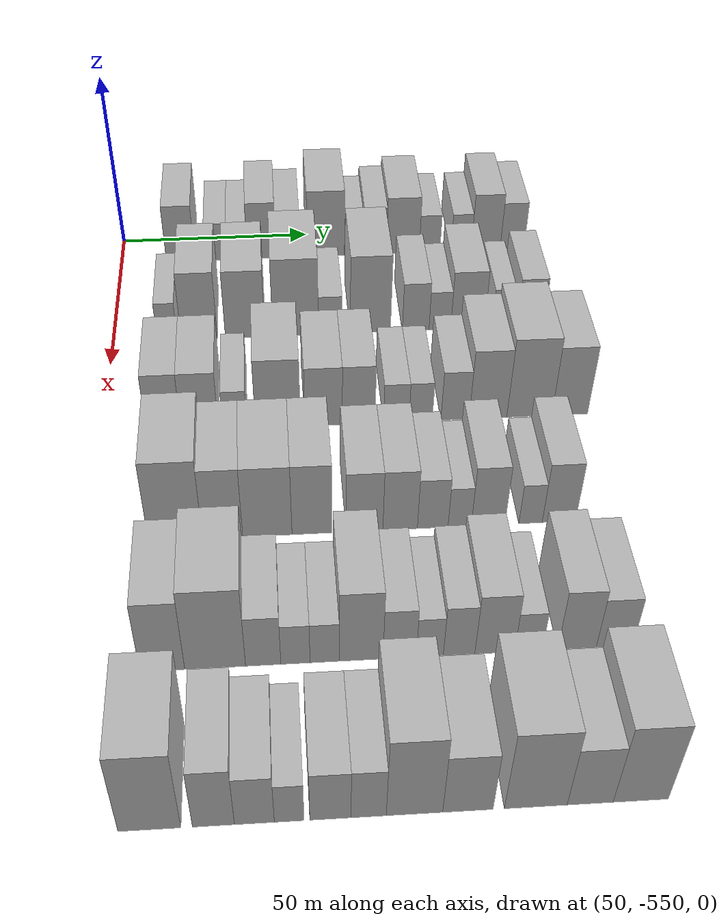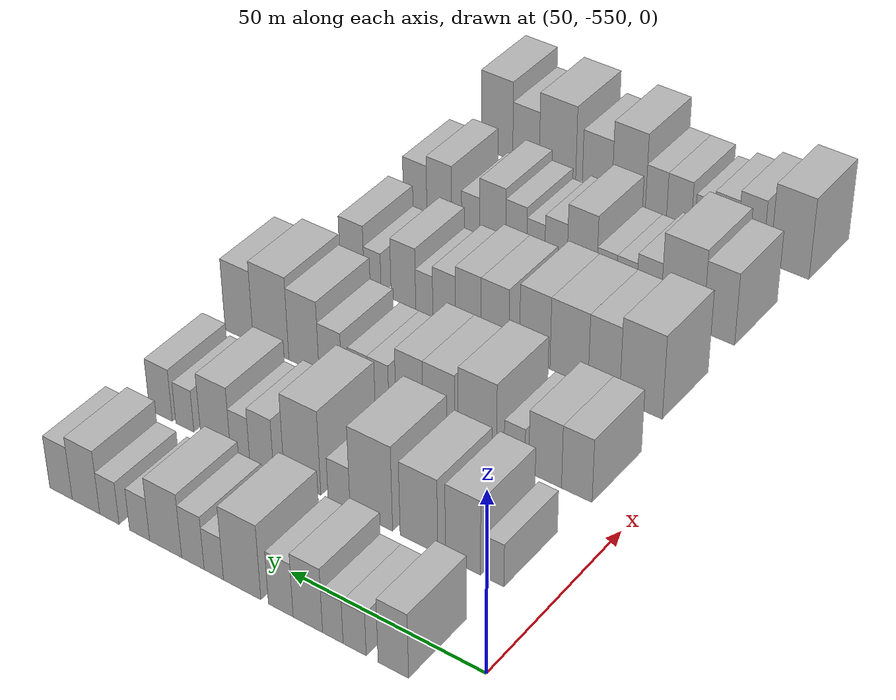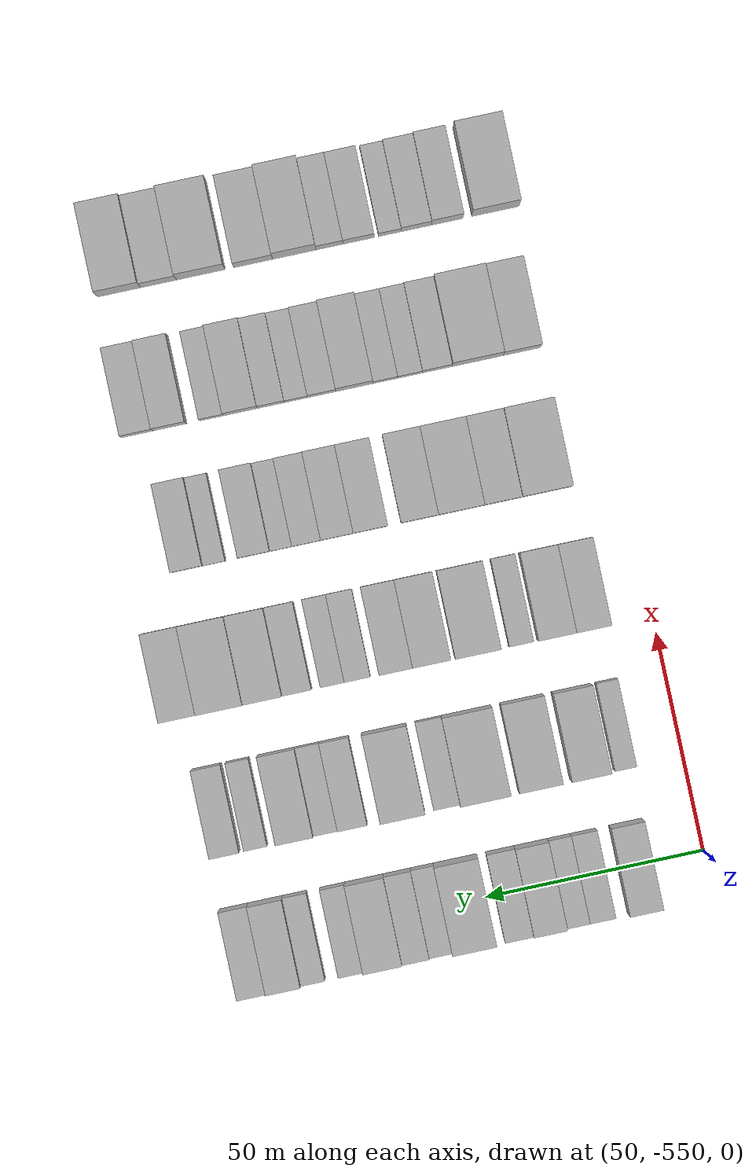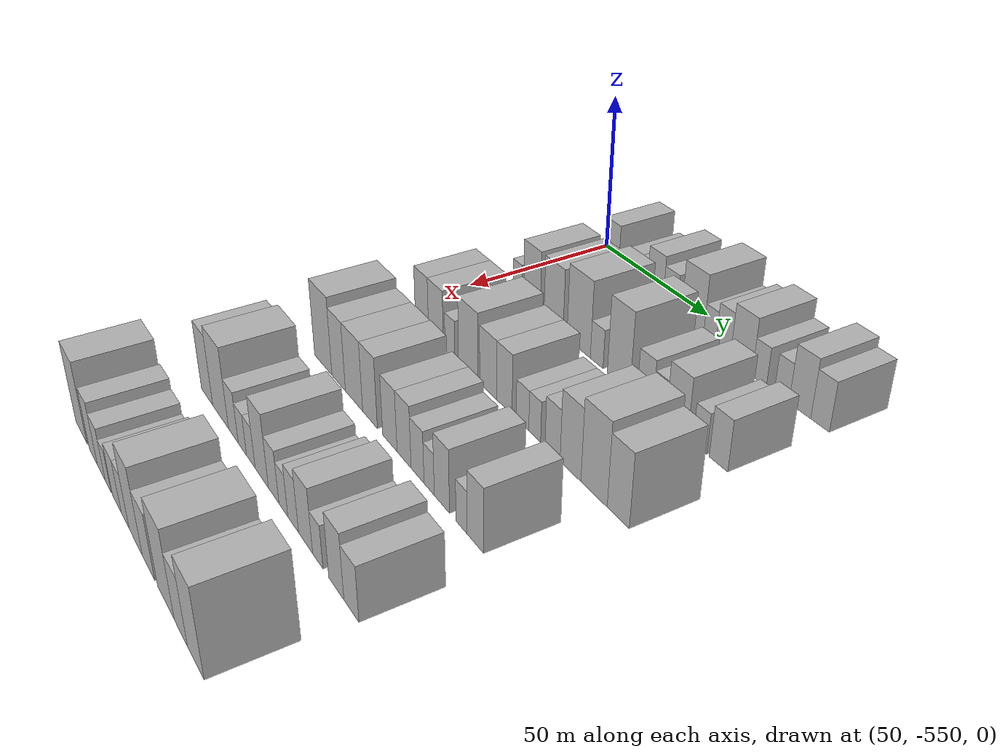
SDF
<sdf version="1.6">
 <world name="default">
  <model name="building_1">
   <static>1</static>
   <pose>50.0000 -534.1991 0 0.000000 0.000000 0.000000</pose>
   <link name="link">
    <pose>0 0 9.00 0 0 0</pose>
    <collision name="collision"><geometry><box><size>20.0000 7.6018 18.0000</size></box></geometry></collision>
    <visual name="visual">
     <cast_shadows>0</cast_shadows>
     <geometry><box><size>20.0000 7.6018 18.0000</size></box></geometry>
     <material>
      <script>
       <uri>model://HANNAS_wall/materials/scripts</uri>
       <uri>model://HANNAS_wall/materials/textures</uri>
       <name>vrc/HANNAS_wall</name>
      </script>
     </material>
    </visual>
   </link>
  </model>
  <model name="building_2">
   <static>1</static>
   <pose>50.0000 -524.4637 0 0.000000 0.000000 0.000000</pose>
   <link name="link">
    <pose>0 0 6.00 0 0 0</pose>
    <collision name="collision"><geometry><box><size>20.0000 5.8690 12.0000</size></box></geometry></collision>
    <visual name="visual">
     <cast_shadows>0</cast_shadows>
     <geometry><box><size>20.0000 5.8690 12.0000</size></box></geometry>
     <material>
      <script>
       <uri>model://HANNAS_wall/materials/scripts</uri>
       <uri>model://HANNAS_wall/materials/textures</uri>
       <name>vrc/HANNAS_wall</name>
      </script>
     </material>
    </visual>
   </link>
  </model>
  <model name="building_3">
   <static>1</static>
   <pose>50.0000 -518.8966 0 0.000000 0.000000 0.000000</pose>
   <link name="link">
    <pose>0 0 6.00 0 0 0</pose>
    <collision name="collision"><geometry><box><size>20.0000 5.2653 12.0000</size></box></geometry></collision>
    <visual name="visual">
     <cast_shadows>0</cast_shadows>
     <geometry><box><size>20.0000 5.2653 12.0000</size></box></geometry>
     <material>
      <script>
       <uri>model://HANNAS_wall/materials/scripts</uri>
       <uri>model://HANNAS_wall/materials/textures</uri>
       <name>vrc/HANNAS_wall</name>
      </script>
     </material>
    </visual>
   </link>
  </model>
  <model name="building_4">
   <static>1</static>
   <pose>50.0000 -512.4413 0 0.000000 0.000000 0.000000</pose>
   <link name="link">
    <pose>0 0 9.00 0 0 0</pose>
    <collision name="collision"><geometry><box><size>20.0000 7.6454 18.0000</size></box></geometry></collision>
    <visual name="visual">
     <cast_shadows>0</cast_shadows>
     <geometry><box><size>20.0000 7.6454 18.0000</size></box></geometry>
     <material>
      <script>
       <uri>model://HANNAS_wall/materials/scripts</uri>
       <uri>model://HANNAS_wall/materials/textures</uri>
       <name>vrc/HANNAS_wall</name>
      </script>
     </material>
    </visual>
   </link>
  </model>
  <model name="building_5">
   <static>1</static>
   <pose>50.0000 -505.3724 0 0.000000 0.000000 0.000000</pose>
   <link name="link">
    <pose>0 0 7.50 0 0 0</pose>
    <collision name="collision"><geometry><box><size>20.0000 6.4923 15.0000</size></box></geometry></collision>
    <visual name="visual">
     <cast_shadows>0</cast_shadows>
     <geometry><box><size>20.0000 6.4923 15.0000</size></box></geometry>
     <material>
      <script>
       <uri>model://HANNAS_wall/materials/scripts</uri>
       <uri>model://HANNAS_wall/materials/textures</uri>
       <name>vrc/HANNAS_wall</name>
      </script>
     </material>
    </visual>
   </link>
  </model>
  <model name="building_6">
   <static>1</static>
   <pose>50.0000 -495.1157 0 0.000000 0.000000 0.000000</pose>
   <link name="link">
    <pose>0 0 10.50 0 0 0</pose>
    <collision name="collision"><geometry><box><size>20.0000 10.0212 21.0000</size></box></geometry></collision>
    <visual name="visual">
     <cast_shadows>0</cast_shadows>
     <geometry><box><size>20.0000 10.0212 21.0000</size></box></geometry>
     <material>
      <script>
       <uri>model://HANNAS_wall/materials/scripts</uri>
       <uri>model://HANNAS_wall/materials/textures</uri>
       <name>vrc/HANNAS_wall</name>
      </script>
     </material>
    </visual>
   </link>
  </model>
  <model name="building_7">
   <static>1</static>
   <pose>50.0000 -487.4866 0 0.000000 0.000000 0.000000</pose>
   <link name="link">
    <pose>0 0 6.00 0 0 0</pose>
    <collision name="collision"><geometry><box><size>20.0000 5.2372 12.0000</size></box></geometry></collision>
    <visual name="visual">
     <cast_shadows>0</cast_shadows>
     <geometry><box><size>20.0000 5.2372 12.0000</size></box></geometry>
     <material>
      <script>
       <uri>model://HANNAS_wall/materials/scripts</uri>
       <uri>model://HANNAS_wall/materials/textures</uri>
       <name>vrc/HANNAS_wall</name>
      </script>
     </material>
    </visual>
   </link>
  </model>
  <model name="building_8">
   <static>1</static>
   <pose>50.0000 -481.7836 0 0.000000 0.000000 0.000000</pose>
   <link name="link">
    <pose>0 0 7.50 0 0 0</pose>
    <collision name="collision"><geometry><box><size>20.0000 6.1688 15.0000</size></box></geometry></collision>
    <visual name="visual">
     <cast_shadows>0</cast_shadows>
     <geometry><box><size>20.0000 6.1688 15.0000</size></box></geometry>
     <material>
      <script>
       <uri>model://HANNAS_wall/materials/scripts</uri>
       <uri>model://HANNAS_wall/materials/textures</uri>
       <name>vrc/HANNAS_wall</name>
      </script>
     </material>
    </visual>
   </link>
  </model>
  <model name="building_9">
   <static>1</static>
   <pose>50.0000 -474.2498 0 0.000000 0.000000 0.000000</pose>
   <link name="link">
    <pose>0 0 9.00 0 0 0</pose>
    <collision name="collision"><geometry><box><size>20.0000 8.8986 18.0000</size></box></geometry></collision>
    <visual name="visual">
     <cast_shadows>0</cast_shadows>
     <geometry><box><size>20.0000 8.8986 18.0000</size></box></geometry>
     <material>
      <script>
       <uri>model://HANNAS_wall/materials/scripts</uri>
       <uri>model://HANNAS_wall/materials/textures</uri>
       <name>vrc/HANNAS_wall</name>
      </script>
     </material>
    </visual>
   </link>
  </model>
  <model name="building_10">
   <static>1</static>
   <pose>50.0000 -466.9744 0 0.000000 0.000000 0.000000</pose>
   <link name="link">
    <pose>0 0 6.00 0 0 0</pose>
    <collision name="collision"><geometry><box><size>20.0000 5.6523 12.0000</size></box></geometry></collision>
    <visual name="visual">
     <cast_shadows>0</cast_shadows>
     <geometry><box><size>20.0000 5.6523 12.0000</size></box></geometry>
     <material>
      <script>
       <uri>model://HANNAS_wall/materials/scripts</uri>
       <uri>model://HANNAS_wall/materials/textures</uri>
       <name>vrc/HANNAS_wall</name>
      </script>
     </material>
    </visual>
   </link>
  </model>
  <model name="building_11">
   <static>1</static>
   <pose>50.0000 -458.3835 0 0.000000 0.000000 0.000000</pose>
   <link name="link">
    <pose>0 0 6.00 0 0 0</pose>
    <collision name="collision"><geometry><box><size>20.0000 5.5294 12.0000</size></box></geometry></collision>
    <visual name="visual">
     <cast_shadows>0</cast_shadows>
     <geometry><box><size>20.0000 5.5294 12.0000</size></box></geometry>
     <material>
      <script>
       <uri>model://HANNAS_wall/materials/scripts</uri>
       <uri>model://HANNAS_wall/materials/textures</uri>
       <name>vrc/HANNAS_wall</name>
      </script>
     </material>
    </visual>
   </link>
  </model>
  <model name="building_12">
   <static>1</static>
   <pose>50.0000 -451.6609 0 0.000000 0.000000 0.000000</pose>
   <link name="link">
    <pose>0 0 9.00 0 0 0</pose>
    <collision name="collision"><geometry><box><size>20.0000 7.9158 18.0000</size></box></geometry></collision>
    <visual name="visual">
     <cast_shadows>0</cast_shadows>
     <geometry><box><size>20.0000 7.9158 18.0000</size></box></geometry>
     <material>
      <script>
       <uri>model://HANNAS_wall/materials/scripts</uri>
       <uri>model://HANNAS_wall/materials/textures</uri>
       <name>vrc/HANNAS_wall</name>
      </script>
     </material>
    </visual>
   </link>
  </model>
  <model name="building_13">
   <static>1</static>
   <pose>50.0000 -444.4153 0 0.000000 0.000000 0.000000</pose>
   <link name="link">
    <pose>0 0 7.50 0 0 0</pose>
    <collision name="collision"><geometry><box><size>20.0000 6.5753 15.0000</size></box></geometry></collision>
    <visual name="visual">
     <cast_shadows>0</cast_shadows>
     <geometry><box><size>20.0000 6.5753 15.0000</size></box></geometry>
     <material>
      <script>
       <uri>model://HANNAS_wall/materials/scripts</uri>
       <uri>model://HANNAS_wall/materials/textures</uri>
       <name>vrc/HANNAS_wall</name>
      </script>
     </material>
    </visual>
   </link>
  </model>
  <model name="building_122">
   <static>1</static>
   <pose>82.0000 -536.5222 0 0.000000 0.000000 0.000000</pose>
   <link name="link">
    <pose>0 0 6.00 0 0 0</pose>
    <collision name="collision"><geometry><box><size>20.0000 4.9557 12.0000</size></box></geometry></collision>
    <visual name="visual">
     <cast_shadows>0</cast_shadows>
     <geometry><box><size>20.0000 4.9557 12.0000</size></box></geometry>
     <material>
      <script>
       <uri>model://HANNAS_wall/materials/scripts</uri>
       <uri>model://HANNAS_wall/materials/textures</uri>
       <name>vrc/HANNAS_wall</name>
      </script>
     </material>
    </visual>
   </link>
  </model>
  <model name="building_123">
   <static>1</static>
   <pose>82.0000 -528.5408 0 0.000000 0.000000 0.000000</pose>
   <link name="link">
    <pose>0 0 10.50 0 0 0</pose>
    <collision name="collision"><geometry><box><size>20.0000 9.0070 21.0000</size></box></geometry></collision>
    <visual name="visual">
     <cast_shadows>0</cast_shadows>
     <geometry><box><size>20.0000 9.0070 21.0000</size></box></geometry>
     <material>
      <script>
       <uri>model://HANNAS_wall/materials/scripts</uri>
       <uri>model://HANNAS_wall/materials/textures</uri>
       <name>vrc/HANNAS_wall</name>
      </script>
     </material>
    </visual>
   </link>
  </model>
  <model name="building_124">
   <static>1</static>
   <pose>82.0000 -517.1032 0 0.000000 0.000000 0.000000</pose>
   <link name="link">
    <pose>0 0 10.50 0 0 0</pose>
    <collision name="collision"><geometry><box><size>20.0000 9.8684 21.0000</size></box></geometry></collision>
    <visual name="visual">
     <cast_shadows>0</cast_shadows>
     <geometry><box><size>20.0000 9.8684 21.0000</size></box></geometry>
     <material>
      <script>
       <uri>model://HANNAS_wall/materials/scripts</uri>
       <uri>model://HANNAS_wall/materials/textures</uri>
       <name>vrc/HANNAS_wall</name>
      </script>
     </material>
    </visual>
   </link>
  </model>
  <model name="building_125">
   <static>1</static>
   <pose>82.0000 -504.4650 0 0.000000 0.000000 0.000000</pose>
   <link name="link">
    <pose>0 0 12.00 0 0 0</pose>
    <collision name="collision"><geometry><box><size>20.0000 11.4079 24.0000</size></box></geometry></collision>
    <visual name="visual">
     <cast_shadows>0</cast_shadows>
     <geometry><box><size>20.0000 11.4079 24.0000</size></box></geometry>
     <material>
      <script>
       <uri>model://HANNAS_wall/materials/scripts</uri>
       <uri>model://HANNAS_wall/materials/textures</uri>
       <name>vrc/HANNAS_wall</name>
      </script>
     </material>
    </visual>
   </link>
  </model>
  <model name="building_126">
   <static>1</static>
   <pose>82.0000 -495.7739 0 0.000000 0.000000 0.000000</pose>
   <link name="link">
    <pose>0 0 6.00 0 0 0</pose>
    <collision name="collision"><geometry><box><size>20.0000 5.9743 12.0000</size></box></geometry></collision>
    <visual name="visual">
     <cast_shadows>0</cast_shadows>
     <geometry><box><size>20.0000 5.9743 12.0000</size></box></geometry>
     <material>
      <script>
       <uri>model://HANNAS_wall/materials/scripts</uri>
       <uri>model://HANNAS_wall/materials/textures</uri>
       <name>vrc/HANNAS_wall</name>
      </script>
     </material>
    </visual>
   </link>
  </model>
  <model name="building_127">
   <static>1</static>
   <pose>82.0000 -485.7121 0 0.000000 0.000000 0.000000</pose>
   <link name="link">
    <pose>0 0 12.00 0 0 0</pose>
    <collision name="collision"><geometry><box><size>20.0000 10.1493 24.0000</size></box></geometry></collision>
    <visual name="visual">
     <cast_shadows>0</cast_shadows>
     <geometry><box><size>20.0000 10.1493 24.0000</size></box></geometry>
     <material>
      <script>
       <uri>model://HANNAS_wall/materials/scripts</uri>
       <uri>model://HANNAS_wall/materials/textures</uri>
       <name>vrc/HANNAS_wall</name>
      </script>
     </material>
    </visual>
   </link>
  </model>
  <model name="building_128">
   <static>1</static>
   <pose>82.0000 -474.2600 0 0.000000 0.000000 0.000000</pose>
   <link name="link">
    <pose>0 0 7.50 0 0 0</pose>
    <collision name="collision"><geometry><box><size>20.0000 6.7550 15.0000</size></box></geometry></collision>
    <visual name="visual">
     <cast_shadows>0</cast_shadows>
     <geometry><box><size>20.0000 6.7550 15.0000</size></box></geometry>
     <material>
      <script>
       <uri>model://HANNAS_wall/materials/scripts</uri>
       <uri>model://HANNAS_wall/materials/textures</uri>
       <name>vrc/HANNAS_wall</name>
      </script>
     </material>
    </visual>
   </link>
  </model>
  <model name="building_129">
   <static>1</static>
   <pose>82.0000 -468.1335 0 0.000000 0.000000 0.000000</pose>
   <link name="link">
    <pose>0 0 6.00 0 0 0</pose>
    <collision name="collision"><geometry><box><size>20.0000 5.4980 12.0000</size></box></geometry></collision>
    <visual name="visual">
     <cast_shadows>0</cast_shadows>
     <geometry><box><size>20.0000 5.4980 12.0000</size></box></geometry>
     <material>
      <script>
       <uri>model://HANNAS_wall/materials/scripts</uri>
       <uri>model://HANNAS_wall/materials/textures</uri>
       <name>vrc/HANNAS_wall</name>
      </script>
     </material>
    </visual>
   </link>
  </model>
  <model name="building_130">
   <static>1</static>
   <pose>82.0000 -461.1105 0 0.000000 0.000000 0.000000</pose>
   <link name="link">
    <pose>0 0 9.00 0 0 0</pose>
    <collision name="collision"><geometry><box><size>20.0000 8.5479 18.0000</size></box></geometry></collision>
    <visual name="visual">
     <cast_shadows>0</cast_shadows>
     <geometry><box><size>20.0000 8.5479 18.0000</size></box></geometry>
     <material>
      <script>
       <uri>model://HANNAS_wall/materials/scripts</uri>
       <uri>model://HANNAS_wall/materials/textures</uri>
       <name>vrc/HANNAS_wall</name>
      </script>
     </material>
    </visual>
   </link>
  </model>
  <model name="building_131">
   <static>1</static>
   <pose>82.0000 -452.1804 0 0.000000 0.000000 0.000000</pose>
   <link name="link">
    <pose>0 0 6.00 0 0 0</pose>
    <collision name="collision"><geometry><box><size>20.0000 5.3122 12.0000</size></box></geometry></collision>
    <visual name="visual">
     <cast_shadows>0</cast_shadows>
     <geometry><box><size>20.0000 5.3122 12.0000</size></box></geometry>
     <material>
      <script>
       <uri>model://HANNAS_wall/materials/scripts</uri>
       <uri>model://HANNAS_wall/materials/textures</uri>
       <name>vrc/HANNAS_wall</name>
      </script>
     </material>
    </visual>
   </link>
  </model>
  <model name="building_132">
   <static>1</static>
   <pose>82.0000 -445.1319 0 0.000000 0.000000 0.000000</pose>
   <link name="link">
    <pose>0 0 7.50 0 0 0</pose>
    <collision name="collision"><geometry><box><size>20.0000 6.7849 15.0000</size></box></geometry></collision>
    <visual name="visual">
     <cast_shadows>0</cast_shadows>
     <geometry><box><size>20.0000 6.7849 15.0000</size></box></geometry>
     <material>
      <script>
       <uri>model://HANNAS_wall/materials/scripts</uri>
       <uri>model://HANNAS_wall/materials/textures</uri>
       <name>vrc/HANNAS_wall</name>
      </script>
     </material>
    </visual>
   </link>
  </model>
  <model name="building_236">
   <static>1</static>
   <pose>114.0000 -536.0311 0 0.000000 0.000000 0.000000</pose>
   <link name="link">
    <pose>0 0 9.00 0 0 0</pose>
    <collision name="collision"><geometry><box><size>20.0000 7.9377 18.0000</size></box></geometry></collision>
    <visual name="visual">
     <cast_shadows>0</cast_shadows>
     <geometry><box><size>20.0000 7.9377 18.0000</size></box></geometry>
     <material>
      <script>
       <uri>model://HANNAS_wall/materials/scripts</uri>
       <uri>model://HANNAS_wall/materials/textures</uri>
       <name>vrc/HANNAS_wall</name>
      </script>
     </material>
    </visual>
   </link>
  </model>
  <model name="building_237">
   <static>1</static>
   <pose>114.0000 -527.7567 0 0.000000 0.000000 0.000000</pose>
   <link name="link">
    <pose>0 0 9.00 0 0 0</pose>
    <collision name="collision"><geometry><box><size>20.0000 8.6112 18.0000</size></box></geometry></collision>
    <visual name="visual">
     <cast_shadows>0</cast_shadows>
     <geometry><box><size>20.0000 8.6112 18.0000</size></box></geometry>
     <material>
      <script>
       <uri>model://HANNAS_wall/materials/scripts</uri>
       <uri>model://HANNAS_wall/materials/textures</uri>
       <name>vrc/HANNAS_wall</name>
      </script>
     </material>
    </visual>
   </link>
  </model>
  <model name="building_238">
   <static>1</static>
   <pose>114.0000 -519.6798 0 0.000000 0.000000 0.000000</pose>
   <link name="link">
    <pose>0 0 6.00 0 0 0</pose>
    <collision name="collision"><geometry><box><size>20.0000 5.5426 12.0000</size></box></geometry></collision>
    <visual name="visual">
     <cast_shadows>0</cast_shadows>
     <geometry><box><size>20.0000 5.5426 12.0000</size></box></geometry>
     <material>
      <script>
       <uri>model://HANNAS_wall/materials/scripts</uri>
       <uri>model://HANNAS_wall/materials/textures</uri>
       <name>vrc/HANNAS_wall</name>
      </script>
     </material>
    </visual>
   </link>
  </model>
  <model name="building_239">
   <static>1</static>
   <pose>114.0000 -509.7211 0 0.000000 0.000000 0.000000</pose>
   <link name="link">
    <pose>0 0 10.50 0 0 0</pose>
    <collision name="collision"><geometry><box><size>20.0000 10.3748 21.0000</size></box></geometry></collision>
    <visual name="visual">
     <cast_shadows>0</cast_shadows>
     <geometry><box><size>20.0000 10.3748 21.0000</size></box></geometry>
     <material>
      <script>
       <uri>model://HANNAS_wall/materials/scripts</uri>
       <uri>model://HANNAS_wall/materials/textures</uri>
       <name>vrc/HANNAS_wall</name>
      </script>
     </material>
    </visual>
   </link>
  </model>
  <model name="building_240">
   <static>1</static>
   <pose>114.0000 -499.1908 0 0.000000 0.000000 0.000000</pose>
   <link name="link">
    <pose>0 0 9.00 0 0 0</pose>
    <collision name="collision"><geometry><box><size>20.0000 8.6857 18.0000</size></box></geometry></collision>
    <visual name="visual">
     <cast_shadows>0</cast_shadows>
     <geometry><box><size>20.0000 8.6857 18.0000</size></box></geometry>
     <material>
      <script>
       <uri>model://HANNAS_wall/materials/scripts</uri>
       <uri>model://HANNAS_wall/materials/textures</uri>
       <name>vrc/HANNAS_wall</name>
      </script>
     </material>
    </visual>
   </link>
  </model>
  <model name="building_241">
   <static>1</static>
   <pose>114.0000 -491.0491 0 0.000000 0.000000 0.000000</pose>
   <link name="link">
    <pose>0 0 9.00 0 0 0</pose>
    <collision name="collision"><geometry><box><size>20.0000 7.5977 18.0000</size></box></geometry></collision>
    <visual name="visual">
     <cast_shadows>0</cast_shadows>
     <geometry><box><size>20.0000 7.5977 18.0000</size></box></geometry>
     <material>
      <script>
       <uri>model://HANNAS_wall/materials/scripts</uri>
       <uri>model://HANNAS_wall/materials/textures</uri>
       <name>vrc/HANNAS_wall</name>
      </script>
     </material>
    </visual>
   </link>
  </model>
  <model name="building_242">
   <static>1</static>
   <pose>114.0000 -482.2731 0 0.000000 0.000000 0.000000</pose>
   <link name="link">
    <pose>0 0 6.00 0 0 0</pose>
    <collision name="collision"><geometry><box><size>20.0000 5.9544 12.0000</size></box></geometry></collision>
    <visual name="visual">
     <cast_shadows>0</cast_shadows>
     <geometry><box><size>20.0000 5.9544 12.0000</size></box></geometry>
     <material>
      <script>
       <uri>model://HANNAS_wall/materials/scripts</uri>
       <uri>model://HANNAS_wall/materials/textures</uri>
       <name>vrc/HANNAS_wall</name>
      </script>
     </material>
    </visual>
   </link>
  </model>
  <model name="building_243">
   <static>1</static>
   <pose>114.0000 -476.5747 0 0.000000 0.000000 0.000000</pose>
   <link name="link">
    <pose>0 0 6.00 0 0 0</pose>
    <collision name="collision"><geometry><box><size>20.0000 5.4423 12.0000</size></box></geometry></collision>
    <visual name="visual">
     <cast_shadows>0</cast_shadows>
     <geometry><box><size>20.0000 5.4423 12.0000</size></box></geometry>
     <material>
      <script>
       <uri>model://HANNAS_wall/materials/scripts</uri>
       <uri>model://HANNAS_wall/materials/textures</uri>
       <name>vrc/HANNAS_wall</name>
      </script>
     </material>
    </visual>
   </link>
  </model>
  <model name="building_244">
   <static>1</static>
   <pose>114.0000 -468.5376 0 0.000000 0.000000 0.000000</pose>
   <link name="link">
    <pose>0 0 7.50 0 0 0</pose>
    <collision name="collision"><geometry><box><size>20.0000 6.6319 15.0000</size></box></geometry></collision>
    <visual name="visual">
     <cast_shadows>0</cast_shadows>
     <geometry><box><size>20.0000 6.6319 15.0000</size></box></geometry>
     <material>
      <script>
       <uri>model://HANNAS_wall/materials/scripts</uri>
       <uri>model://HANNAS_wall/materials/textures</uri>
       <name>vrc/HANNAS_wall</name>
      </script>
     </material>
    </visual>
   </link>
  </model>
  <model name="building_245">
   <static>1</static>
   <pose>114.0000 -460.7966 0 0.000000 0.000000 0.000000</pose>
   <link name="link">
    <pose>0 0 10.50 0 0 0</pose>
    <collision name="collision"><geometry><box><size>20.0000 8.8501 21.0000</size></box></geometry></collision>
    <visual name="visual">
     <cast_shadows>0</cast_shadows>
     <geometry><box><size>20.0000 8.8501 21.0000</size></box></geometry>
     <material>
      <script>
       <uri>model://HANNAS_wall/materials/scripts</uri>
       <uri>model://HANNAS_wall/materials/textures</uri>
       <name>vrc/HANNAS_wall</name>
      </script>
     </material>
    </visual>
   </link>
  </model>
  <model name="building_246">
   <static>1</static>
   <pose>114.0000 -451.0702 0 0.000000 0.000000 0.000000</pose>
   <link name="link">
    <pose>0 0 12.00 0 0 0</pose>
    <collision name="collision"><geometry><box><size>20.0000 10.6026 24.0000</size></box></geometry></collision>
    <visual name="visual">
     <cast_shadows>0</cast_shadows>
     <geometry><box><size>20.0000 10.6026 24.0000</size></box></geometry>
     <material>
      <script>
       <uri>model://HANNAS_wall/materials/scripts</uri>
       <uri>model://HANNAS_wall/materials/textures</uri>
       <name>vrc/HANNAS_wall</name>
      </script>
     </material>
    </visual>
   </link>
  </model>
  <model name="building_247">
   <static>1</static>
   <pose>114.0000 -441.5308 0 0.000000 0.000000 0.000000</pose>
   <link name="link">
    <pose>0 0 10.50 0 0 0</pose>
    <collision name="collision"><geometry><box><size>20.0000 8.4763 21.0000</size></box></geometry></collision>
    <visual name="visual">
     <cast_shadows>0</cast_shadows>
     <geometry><box><size>20.0000 8.4763 21.0000</size></box></geometry>
     <material>
      <script>
       <uri>model://HANNAS_wall/materials/scripts</uri>
       <uri>model://HANNAS_wall/materials/textures</uri>
       <name>vrc/HANNAS_wall</name>
      </script>
     </material>
    </visual>
   </link>
  </model>
  <model name="building_352">
   <static>1</static>
   <pose>146.0000 -532.3062 0 0.000000 0.000000 0.000000</pose>
   <link name="link">
    <pose>0 0 12.00 0 0 0</pose>
    <collision name="collision"><geometry><box><size>20.0000 11.3876 24.0000</size></box></geometry></collision>
    <visual name="visual">
     <cast_shadows>0</cast_shadows>
     <geometry><box><size>20.0000 11.3876 24.0000</size></box></geometry>
     <material>
      <script>
       <uri>model://HANNAS_wall/materials/scripts</uri>
       <uri>model://HANNAS_wall/materials/textures</uri>
       <name>vrc/HANNAS_wall</name>
      </script>
     </material>
    </visual>
   </link>
  </model>
  <model name="building_353">
   <static>1</static>
   <pose>146.0000 -522.3498 0 0.000000 0.000000 0.000000</pose>
   <link name="link">
    <pose>0 0 10.50 0 0 0</pose>
    <collision name="collision"><geometry><box><size>20.0000 8.5253 21.0000</size></box></geometry></collision>
    <visual name="visual">
     <cast_shadows>0</cast_shadows>
     <geometry><box><size>20.0000 8.5253 21.0000</size></box></geometry>
     <material>
      <script>
       <uri>model://HANNAS_wall/materials/scripts</uri>
       <uri>model://HANNAS_wall/materials/textures</uri>
       <name>vrc/HANNAS_wall</name>
      </script>
     </material>
    </visual>
   </link>
  </model>
  <model name="building_354">
   <static>1</static>
   <pose>146.0000 -512.8570 0 0.000000 0.000000 0.000000</pose>
   <link name="link">
    <pose>0 0 10.50 0 0 0</pose>
    <collision name="collision"><geometry><box><size>20.0000 10.4602 21.0000</size></box></geometry></collision>
    <visual name="visual">
     <cast_shadows>0</cast_shadows>
     <geometry><box><size>20.0000 10.4602 21.0000</size></box></geometry>
     <material>
      <script>
       <uri>model://HANNAS_wall/materials/scripts</uri>
       <uri>model://HANNAS_wall/materials/textures</uri>
       <name>vrc/HANNAS_wall</name>
      </script>
     </material>
    </visual>
   </link>
  </model>
  <model name="building_355">
   <static>1</static>
   <pose>146.0000 -503.3755 0 0.000000 0.000000 0.000000</pose>
   <link name="link">
    <pose>0 0 10.50 0 0 0</pose>
    <collision name="collision"><geometry><box><size>20.0000 8.5027 21.0000</size></box></geometry></collision>
    <visual name="visual">
     <cast_shadows>0</cast_shadows>
     <geometry><box><size>20.0000 8.5027 21.0000</size></box></geometry>
     <material>
      <script>
       <uri>model://HANNAS_wall/materials/scripts</uri>
       <uri>model://HANNAS_wall/materials/textures</uri>
       <name>vrc/HANNAS_wall</name>
      </script>
     </material>
    </visual>
   </link>
  </model>
  <model name="building_356">
   <static>1</static>
   <pose>146.0000 -492.1984 0 0.000000 0.000000 0.000000</pose>
   <link name="link">
    <pose>0 0 9.00 0 0 0</pose>
    <collision name="collision"><geometry><box><size>20.0000 7.8516 18.0000</size></box></geometry></collision>
    <visual name="visual">
     <cast_shadows>0</cast_shadows>
     <geometry><box><size>20.0000 7.8516 18.0000</size></box></geometry>
     <material>
      <script>
       <uri>model://HANNAS_wall/materials/scripts</uri>
       <uri>model://HANNAS_wall/materials/textures</uri>
       <name>vrc/HANNAS_wall</name>
      </script>
     </material>
    </visual>
   </link>
  </model>
  <model name="building_357">
   <static>1</static>
   <pose>146.0000 -484.5742 0 0.000000 0.000000 0.000000</pose>
   <link name="link">
    <pose>0 0 9.00 0 0 0</pose>
    <collision name="collision"><geometry><box><size>20.0000 7.3967 18.0000</size></box></geometry></collision>
    <visual name="visual">
     <cast_shadows>0</cast_shadows>
     <geometry><box><size>20.0000 7.3967 18.0000</size></box></geometry>
     <material>
      <script>
       <uri>model://HANNAS_wall/materials/scripts</uri>
       <uri>model://HANNAS_wall/materials/textures</uri>
       <name>vrc/HANNAS_wall</name>
      </script>
     </material>
    </visual>
   </link>
  </model>
  <model name="building_358">
   <static>1</static>
   <pose>146.0000 -477.5885 0 0.000000 0.000000 0.000000</pose>
   <link name="link">
    <pose>0 0 7.50 0 0 0</pose>
    <collision name="collision"><geometry><box><size>20.0000 6.5748 15.0000</size></box></geometry></collision>
    <visual name="visual">
     <cast_shadows>0</cast_shadows>
     <geometry><box><size>20.0000 6.5748 15.0000</size></box></geometry>
     <material>
      <script>
       <uri>model://HANNAS_wall/materials/scripts</uri>
       <uri>model://HANNAS_wall/materials/textures</uri>
       <name>vrc/HANNAS_wall</name>
      </script>
     </material>
    </visual>
   </link>
  </model>
  <model name="building_359">
   <static>1</static>
   <pose>146.0000 -471.7931 0 0.000000 0.000000 0.000000</pose>
   <link name="link">
    <pose>0 0 6.00 0 0 0</pose>
    <collision name="collision"><geometry><box><size>20.0000 5.0159 12.0000</size></box></geometry></collision>
    <visual name="visual">
     <cast_shadows>0</cast_shadows>
     <geometry><box><size>20.0000 5.0159 12.0000</size></box></geometry>
     <material>
      <script>
       <uri>model://HANNAS_wall/materials/scripts</uri>
       <uri>model://HANNAS_wall/materials/textures</uri>
       <name>vrc/HANNAS_wall</name>
      </script>
     </material>
    </visual>
   </link>
  </model>
  <model name="building_360">
   <static>1</static>
   <pose>146.0000 -465.6546 0 0.000000 0.000000 0.000000</pose>
   <link name="link">
    <pose>0 0 9.00 0 0 0</pose>
    <collision name="collision"><geometry><box><size>20.0000 7.2610 18.0000</size></box></geometry></collision>
    <visual name="visual">
     <cast_shadows>0</cast_shadows>
     <geometry><box><size>20.0000 7.2610 18.0000</size></box></geometry>
     <material>
      <script>
       <uri>model://HANNAS_wall/materials/scripts</uri>
       <uri>model://HANNAS_wall/materials/textures</uri>
       <name>vrc/HANNAS_wall</name>
      </script>
     </material>
    </visual>
   </link>
  </model>
  <model name="building_361">
   <static>1</static>
   <pose>146.0000 -456.5005 0 0.000000 0.000000 0.000000</pose>
   <link name="link">
    <pose>0 0 6.00 0 0 0</pose>
    <collision name="collision"><geometry><box><size>20.0000 5.0473 12.0000</size></box></geometry></collision>
    <visual name="visual">
     <cast_shadows>0</cast_shadows>
     <geometry><box><size>20.0000 5.0473 12.0000</size></box></geometry>
     <material>
      <script>
       <uri>model://HANNAS_wall/materials/scripts</uri>
       <uri>model://HANNAS_wall/materials/textures</uri>
       <name>vrc/HANNAS_wall</name>
      </script>
     </material>
    </visual>
   </link>
  </model>
  <model name="building_362">
   <static>1</static>
   <pose>146.0000 -450.3592 0 0.000000 0.000000 0.000000</pose>
   <link name="link">
    <pose>0 0 9.00 0 0 0</pose>
    <collision name="collision"><geometry><box><size>20.0000 7.2352 18.0000</size></box></geometry></collision>
    <visual name="visual">
     <cast_shadows>0</cast_shadows>
     <geometry><box><size>20.0000 7.2352 18.0000</size></box></geometry>
     <material>
      <script>
       <uri>model://HANNAS_wall/materials/scripts</uri>
       <uri>model://HANNAS_wall/materials/textures</uri>
       <name>vrc/HANNAS_wall</name>
      </script>
     </material>
    </visual>
   </link>
  </model>
  <model name="building_475">
   <static>1</static>
   <pose>178.0000 -533.7002 0 0.000000 0.000000 0.000000</pose>
   <link name="link">
    <pose>0 0 10.50 0 0 0</pose>
    <collision name="collision"><geometry><box><size>20.0000 8.5996 21.0000</size></box></geometry></collision>
    <visual name="visual">
     <cast_shadows>0</cast_shadows>
     <geometry><box><size>20.0000 8.5996 21.0000</size></box></geometry>
     <material>
      <script>
       <uri>model://HANNAS_wall/materials/scripts</uri>
       <uri>model://HANNAS_wall/materials/textures</uri>
       <name>vrc/HANNAS_wall</name>
      </script>
     </material>
    </visual>
   </link>
  </model>
  <model name="building_476">
   <static>1</static>
   <pose>178.0000 -523.5572 0 0.000000 0.000000 0.000000</pose>
   <link name="link">
    <pose>0 0 12.00 0 0 0</pose>
    <collision name="collision"><geometry><box><size>20.0000 11.6865 24.0000</size></box></geometry></collision>
    <visual name="visual">
     <cast_shadows>0</cast_shadows>
     <geometry><box><size>20.0000 11.6865 24.0000</size></box></geometry>
     <material>
      <script>
       <uri>model://HANNAS_wall/materials/scripts</uri>
       <uri>model://HANNAS_wall/materials/textures</uri>
       <name>vrc/HANNAS_wall</name>
      </script>
     </material>
    </visual>
   </link>
  </model>
  <model name="building_477">
   <static>1</static>
   <pose>178.0000 -514.3060 0 0.000000 0.000000 0.000000</pose>
   <link name="link">
    <pose>0 0 7.50 0 0 0</pose>
    <collision name="collision"><geometry><box><size>20.0000 6.8159 15.0000</size></box></geometry></collision>
    <visual name="visual">
     <cast_shadows>0</cast_shadows>
     <geometry><box><size>20.0000 6.8159 15.0000</size></box></geometry>
     <material>
      <script>
       <uri>model://HANNAS_wall/materials/scripts</uri>
       <uri>model://HANNAS_wall/materials/textures</uri>
       <name>vrc/HANNAS_wall</name>
      </script>
     </material>
    </visual>
   </link>
  </model>
  <model name="building_478">
   <static>1</static>
   <pose>178.0000 -508.0785 0 0.000000 0.000000 0.000000</pose>
   <link name="link">
    <pose>0 0 6.00 0 0 0</pose>
    <collision name="collision"><geometry><box><size>20.0000 5.6392 12.0000</size></box></geometry></collision>
    <visual name="visual">
     <cast_shadows>0</cast_shadows>
     <geometry><box><size>20.0000 5.6392 12.0000</size></box></geometry>
     <material>
      <script>
       <uri>model://HANNAS_wall/materials/scripts</uri>
       <uri>model://HANNAS_wall/materials/textures</uri>
       <name>vrc/HANNAS_wall</name>
      </script>
     </material>
    </visual>
   </link>
  </model>
  <model name="building_479">
   <static>1</static>
   <pose>178.0000 -502.4257 0 0.000000 0.000000 0.000000</pose>
   <link name="link">
    <pose>0 0 6.00 0 0 0</pose>
    <collision name="collision"><geometry><box><size>20.0000 5.6665 12.0000</size></box></geometry></collision>
    <visual name="visual">
     <cast_shadows>0</cast_shadows>
     <geometry><box><size>20.0000 5.6665 12.0000</size></box></geometry>
     <material>
      <script>
       <uri>model://HANNAS_wall/materials/scripts</uri>
       <uri>model://HANNAS_wall/materials/textures</uri>
       <name>vrc/HANNAS_wall</name>
      </script>
     </material>
    </visual>
   </link>
  </model>
  <model name="building_480">
   <static>1</static>
   <pose>178.0000 -495.3494 0 0.000000 0.000000 0.000000</pose>
   <link name="link">
    <pose>0 0 10.50 0 0 0</pose>
    <collision name="collision"><geometry><box><size>20.0000 8.4861 21.0000</size></box></geometry></collision>
    <visual name="visual">
     <cast_shadows>0</cast_shadows>
     <geometry><box><size>20.0000 8.4861 21.0000</size></box></geometry>
     <material>
      <script>
       <uri>model://HANNAS_wall/materials/scripts</uri>
       <uri>model://HANNAS_wall/materials/textures</uri>
       <name>vrc/HANNAS_wall</name>
      </script>
     </material>
    </visual>
   </link>
  </model>
  <model name="building_481">
   <static>1</static>
   <pose>178.0000 -487.8759 0 0.000000 0.000000 0.000000</pose>
   <link name="link">
    <pose>0 0 7.50 0 0 0</pose>
    <collision name="collision"><geometry><box><size>20.0000 6.4610 15.0000</size></box></geometry></collision>
    <visual name="visual">
     <cast_shadows>0</cast_shadows>
     <geometry><box><size>20.0000 6.4610 15.0000</size></box></geometry>
     <material>
      <script>
       <uri>model://HANNAS_wall/materials/scripts</uri>
       <uri>model://HANNAS_wall/materials/textures</uri>
       <name>vrc/HANNAS_wall</name>
      </script>
     </material>
    </visual>
   </link>
  </model>
  <model name="building_482">
   <static>1</static>
   <pose>178.0000 -481.9979 0 0.000000 0.000000 0.000000</pose>
   <link name="link">
    <pose>0 0 6.00 0 0 0</pose>
    <collision name="collision"><geometry><box><size>20.0000 5.2950 12.0000</size></box></geometry></collision>
    <visual name="visual">
     <cast_shadows>0</cast_shadows>
     <geometry><box><size>20.0000 5.2950 12.0000</size></box></geometry>
     <material>
      <script>
       <uri>model://HANNAS_wall/materials/scripts</uri>
       <uri>model://HANNAS_wall/materials/textures</uri>
       <name>vrc/HANNAS_wall</name>
      </script>
     </material>
    </visual>
   </link>
  </model>
  <model name="building_483">
   <static>1</static>
   <pose>178.0000 -476.2620 0 0.000000 0.000000 0.000000</pose>
   <link name="link">
    <pose>0 0 7.50 0 0 0</pose>
    <collision name="collision"><geometry><box><size>20.0000 6.1768 15.0000</size></box></geometry></collision>
    <visual name="visual">
     <cast_shadows>0</cast_shadows>
     <geometry><box><size>20.0000 6.1768 15.0000</size></box></geometry>
     <material>
      <script>
       <uri>model://HANNAS_wall/materials/scripts</uri>
       <uri>model://HANNAS_wall/materials/textures</uri>
       <name>vrc/HANNAS_wall</name>
      </script>
     </material>
    </visual>
   </link>
  </model>
  <model name="building_484">
   <static>1</static>
   <pose>178.0000 -469.2791 0 0.000000 0.000000 0.000000</pose>
   <link name="link">
    <pose>0 0 9.00 0 0 0</pose>
    <collision name="collision"><geometry><box><size>20.0000 7.7890 18.0000</size></box></geometry></collision>
    <visual name="visual">
     <cast_shadows>0</cast_shadows>
     <geometry><box><size>20.0000 7.7890 18.0000</size></box></geometry>
     <material>
      <script>
       <uri>model://HANNAS_wall/materials/scripts</uri>
       <uri>model://HANNAS_wall/materials/textures</uri>
       <name>vrc/HANNAS_wall</name>
      </script>
     </material>
    </visual>
   </link>
  </model>
  <model name="building_485">
   <static>1</static>
   <pose>178.0000 -462.6354 0 0.000000 0.000000 0.000000</pose>
   <link name="link">
    <pose>0 0 6.00 0 0 0</pose>
    <collision name="collision"><geometry><box><size>20.0000 5.4984 12.0000</size></box></geometry></collision>
    <visual name="visual">
     <cast_shadows>0</cast_shadows>
     <geometry><box><size>20.0000 5.4984 12.0000</size></box></geometry>
     <material>
      <script>
       <uri>model://HANNAS_wall/materials/scripts</uri>
       <uri>model://HANNAS_wall/materials/textures</uri>
       <name>vrc/HANNAS_wall</name>
      </script>
     </material>
    </visual>
   </link>
  </model>
  <model name="building_486">
   <static>1</static>
   <pose>178.0000 -453.0637 0 0.000000 0.000000 0.000000</pose>
   <link name="link">
    <pose>0 0 9.00 0 0 0</pose>
    <collision name="collision"><geometry><box><size>20.0000 7.6450 18.0000</size></box></geometry></collision>
    <visual name="visual">
     <cast_shadows>0</cast_shadows>
     <geometry><box><size>20.0000 7.6450 18.0000</size></box></geometry>
     <material>
      <script>
       <uri>model://HANNAS_wall/materials/scripts</uri>
       <uri>model://HANNAS_wall/materials/textures</uri>
       <name>vrc/HANNAS_wall</name>
      </script>
     </material>
    </visual>
   </link>
  </model>
  <model name="building_487">
   <static>1</static>
   <pose>178.0000 -445.6131 0 0.000000 0.000000 0.000000</pose>
   <link name="link">
    <pose>0 0 7.50 0 0 0</pose>
    <collision name="collision"><geometry><box><size>20.0000 7.2562 15.0000</size></box></geometry></collision>
    <visual name="visual">
     <cast_shadows>0</cast_shadows>
     <geometry><box><size>20.0000 7.2562 15.0000</size></box></geometry>
     <material>
      <script>
       <uri>model://HANNAS_wall/materials/scripts</uri>
       <uri>model://HANNAS_wall/materials/textures</uri>
       <name>vrc/HANNAS_wall</name>
      </script>
     </material>
    </visual>
   </link>
  </model>
  <model name="building_591">
   <static>1</static>
   <pose>210.0000 -534.5713 0 0.000000 0.000000 0.000000</pose>
   <link name="link">
    <pose>0 0 12.00 0 0 0</pose>
    <collision name="collision"><geometry><box><size>20.0000 10.8573 24.0000</size></box></geometry></collision>
    <visual name="visual">
     <cast_shadows>0</cast_shadows>
     <geometry><box><size>20.0000 10.8573 24.0000</size></box></geometry>
     <material>
      <script>
       <uri>model://HANNAS_wall/materials/scripts</uri>
       <uri>model://HANNAS_wall/materials/textures</uri>
       <name>vrc/HANNAS_wall</name>
      </script>
     </material>
    </visual>
   </link>
  </model>
  <model name="building_592">
   <static>1</static>
   <pose>210.0000 -523.5032 0 0.000000 0.000000 0.000000</pose>
   <link name="link">
    <pose>0 0 9.00 0 0 0</pose>
    <collision name="collision"><geometry><box><size>20.0000 7.2790 18.0000</size></box></geometry></collision>
    <visual name="visual">
     <cast_shadows>0</cast_shadows>
     <geometry><box><size>20.0000 7.2790 18.0000</size></box></geometry>
     <material>
      <script>
       <uri>model://HANNAS_wall/materials/scripts</uri>
       <uri>model://HANNAS_wall/materials/textures</uri>
       <name>vrc/HANNAS_wall</name>
      </script>
     </material>
    </visual>
   </link>
  </model>
  <model name="building_593">
   <static>1</static>
   <pose>210.0000 -516.3963 0 0.000000 0.000000 0.000000</pose>
   <link name="link">
    <pose>0 0 7.50 0 0 0</pose>
    <collision name="collision"><geometry><box><size>20.0000 6.9348 15.0000</size></box></geometry></collision>
    <visual name="visual">
     <cast_shadows>0</cast_shadows>
     <geometry><box><size>20.0000 6.9348 15.0000</size></box></geometry>
     <material>
      <script>
       <uri>model://HANNAS_wall/materials/scripts</uri>
       <uri>model://HANNAS_wall/materials/textures</uri>
       <name>vrc/HANNAS_wall</name>
      </script>
     </material>
    </visual>
   </link>
  </model>
  <model name="building_594">
   <static>1</static>
   <pose>210.0000 -510.3402 0 0.000000 0.000000 0.000000</pose>
   <link name="link">
    <pose>0 0 6.00 0 0 0</pose>
    <collision name="collision"><geometry><box><size>20.0000 5.1775 12.0000</size></box></geometry></collision>
    <visual name="visual">
     <cast_shadows>0</cast_shadows>
     <geometry><box><size>20.0000 5.1775 12.0000</size></box></geometry>
     <material>
      <script>
       <uri>model://HANNAS_wall/materials/scripts</uri>
       <uri>model://HANNAS_wall/materials/textures</uri>
       <name>vrc/HANNAS_wall</name>
      </script>
     </material>
    </visual>
   </link>
  </model>
  <model name="building_595">
   <static>1</static>
   <pose>210.0000 -503.1665 0 0.000000 0.000000 0.000000</pose>
   <link name="link">
    <pose>0 0 7.50 0 0 0</pose>
    <collision name="collision"><geometry><box><size>20.0000 7.1698 15.0000</size></box></geometry></collision>
    <visual name="visual">
     <cast_shadows>0</cast_shadows>
     <geometry><box><size>20.0000 7.1698 15.0000</size></box></geometry>
     <material>
      <script>
       <uri>model://HANNAS_wall/materials/scripts</uri>
       <uri>model://HANNAS_wall/materials/textures</uri>
       <name>vrc/HANNAS_wall</name>
      </script>
     </material>
    </visual>
   </link>
  </model>
  <model name="building_596">
   <static>1</static>
   <pose>210.0000 -496.4894 0 0.000000 0.000000 0.000000</pose>
   <link name="link">
    <pose>0 0 7.50 0 0 0</pose>
    <collision name="collision"><geometry><box><size>20.0000 6.1843 15.0000</size></box></geometry></collision>
    <visual name="visual">
     <cast_shadows>0</cast_shadows>
     <geometry><box><size>20.0000 6.1843 15.0000</size></box></geometry>
     <material>
      <script>
       <uri>model://HANNAS_wall/materials/scripts</uri>
       <uri>model://HANNAS_wall/materials/textures</uri>
       <name>vrc/HANNAS_wall</name>
      </script>
     </material>
    </visual>
   </link>
  </model>
  <model name="building_597">
   <static>1</static>
   <pose>210.0000 -488.4387 0 0.000000 0.000000 0.000000</pose>
   <link name="link">
    <pose>0 0 12.00 0 0 0</pose>
    <collision name="collision"><geometry><box><size>20.0000 9.9172 24.0000</size></box></geometry></collision>
    <visual name="visual">
     <cast_shadows>0</cast_shadows>
     <geometry><box><size>20.0000 9.9172 24.0000</size></box></geometry>
     <material>
      <script>
       <uri>model://HANNAS_wall/materials/scripts</uri>
       <uri>model://HANNAS_wall/materials/textures</uri>
       <name>vrc/HANNAS_wall</name>
      </script>
     </material>
    </visual>
   </link>
  </model>
  <model name="building_598">
   <static>1</static>
   <pose>210.0000 -479.0303 0 0.000000 0.000000 0.000000</pose>
   <link name="link">
    <pose>0 0 9.00 0 0 0</pose>
    <collision name="collision"><geometry><box><size>20.0000 8.8996 18.0000</size></box></geometry></collision>
    <visual name="visual">
     <cast_shadows>0</cast_shadows>
     <geometry><box><size>20.0000 8.8996 18.0000</size></box></geometry>
     <material>
      <script>
       <uri>model://HANNAS_wall/materials/scripts</uri>
       <uri>model://HANNAS_wall/materials/textures</uri>
       <name>vrc/HANNAS_wall</name>
      </script>
     </material>
    </visual>
   </link>
  </model>
  <model name="building_599">
   <static>1</static>
   <pose>210.0000 -467.0095 0 0.000000 0.000000 0.000000</pose>
   <link name="link">
    <pose>0 0 12.00 0 0 0</pose>
    <collision name="collision"><geometry><box><size>20.0000 11.1420 24.0000</size></box></geometry></collision>
    <visual name="visual">
     <cast_shadows>0</cast_shadows>
     <geometry><box><size>20.0000 11.1420 24.0000</size></box></geometry>
     <material>
      <script>
       <uri>model://HANNAS_wall/materials/scripts</uri>
       <uri>model://HANNAS_wall/materials/textures</uri>
       <name>vrc/HANNAS_wall</name>
      </script>
     </material>
    </visual>
   </link>
  </model>
  <model name="building_600">
   <static>1</static>
   <pose>210.0000 -457.3418 0 0.000000 0.000000 0.000000</pose>
   <link name="link">
    <pose>0 0 9.00 0 0 0</pose>
    <collision name="collision"><geometry><box><size>20.0000 8.1934 18.0000</size></box></geometry></collision>
    <visual name="visual">
     <cast_shadows>0</cast_shadows>
     <geometry><box><size>20.0000 8.1934 18.0000</size></box></geometry>
     <material>
      <script>
       <uri>model://HANNAS_wall/materials/scripts</uri>
       <uri>model://HANNAS_wall/materials/textures</uri>
       <name>vrc/HANNAS_wall</name>
      </script>
     </material>
    </visual>
   </link>
  </model>
  <model name="building_601">
   <static>1</static>
   <pose>210.0000 -448.3058 0 0.000000 0.000000 0.000000</pose>
   <link name="link">
    <pose>0 0 12.00 0 0 0</pose>
    <collision name="collision"><geometry><box><size>20.0000 9.8785 24.0000</size></box></geometry></collision>
    <visual name="visual">
     <cast_shadows>0</cast_shadows>
     <geometry><box><size>20.0000 9.8785 24.0000</size></box></geometry>
     <material>
      <script>
       <uri>model://HANNAS_wall/materials/scripts</uri>
       <uri>model://HANNAS_wall/materials/textures</uri>
       <name>vrc/HANNAS_wall</name>
      </script>
     </material>
    </visual>
   </link>
  </model>
 </world>
</sdf>
